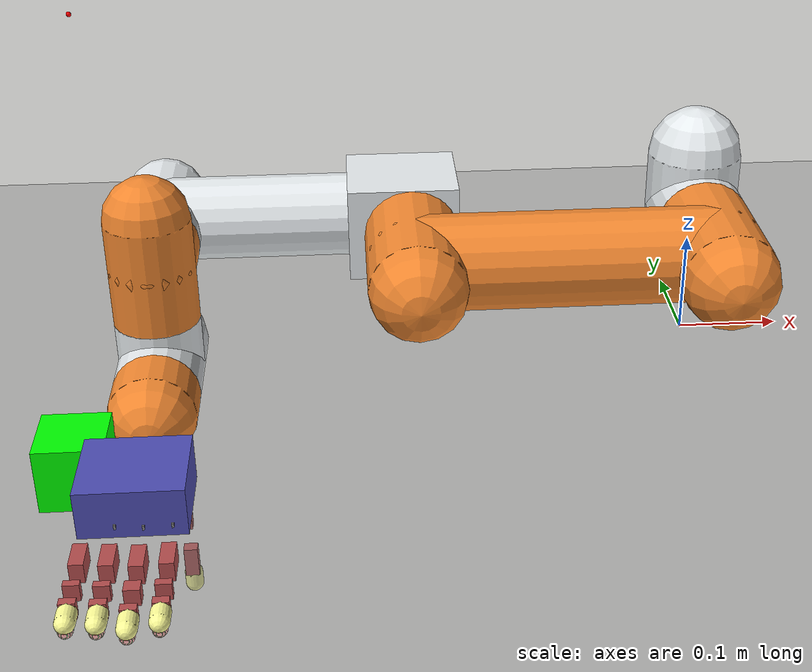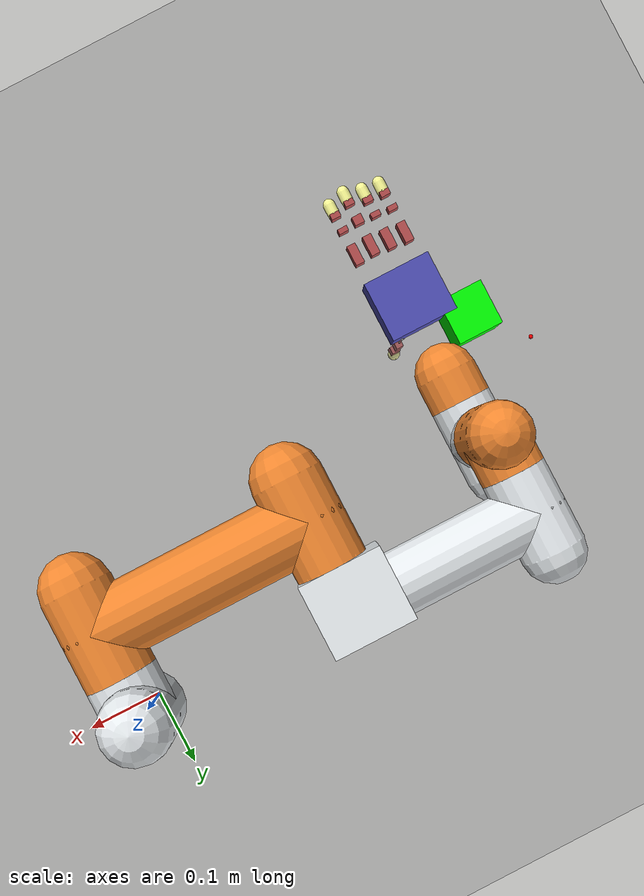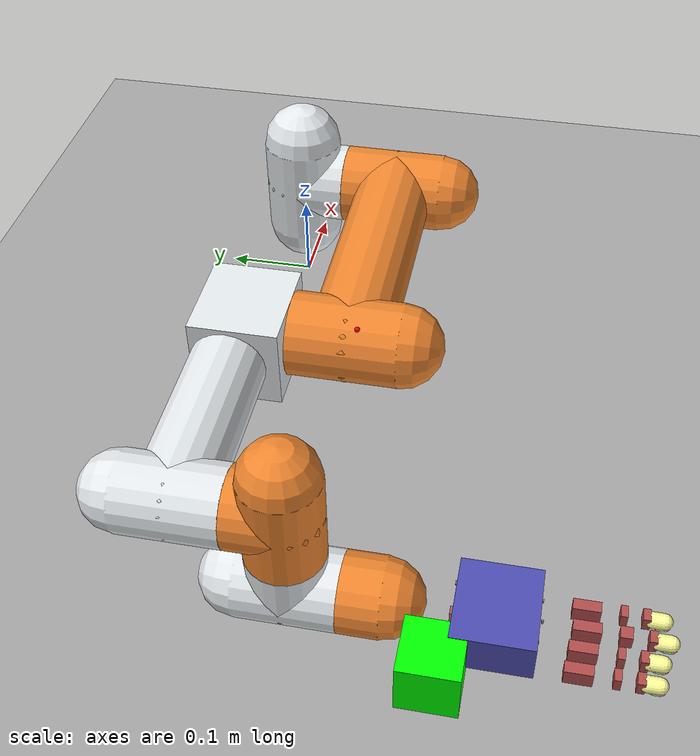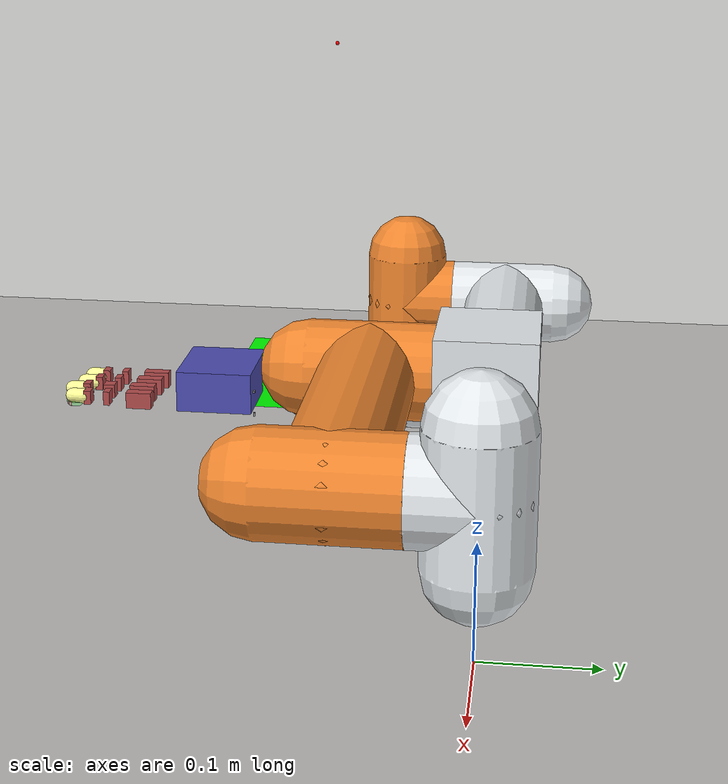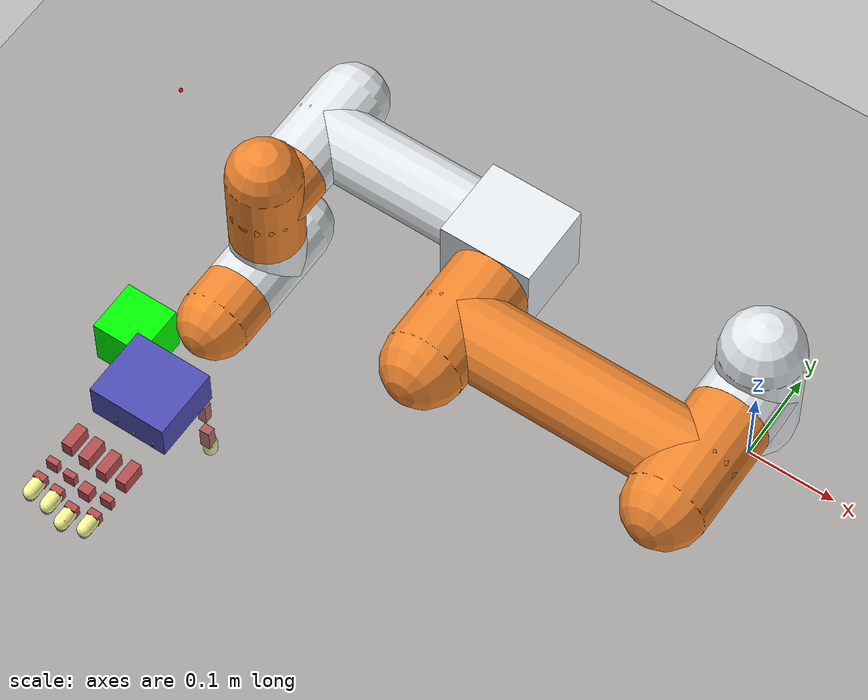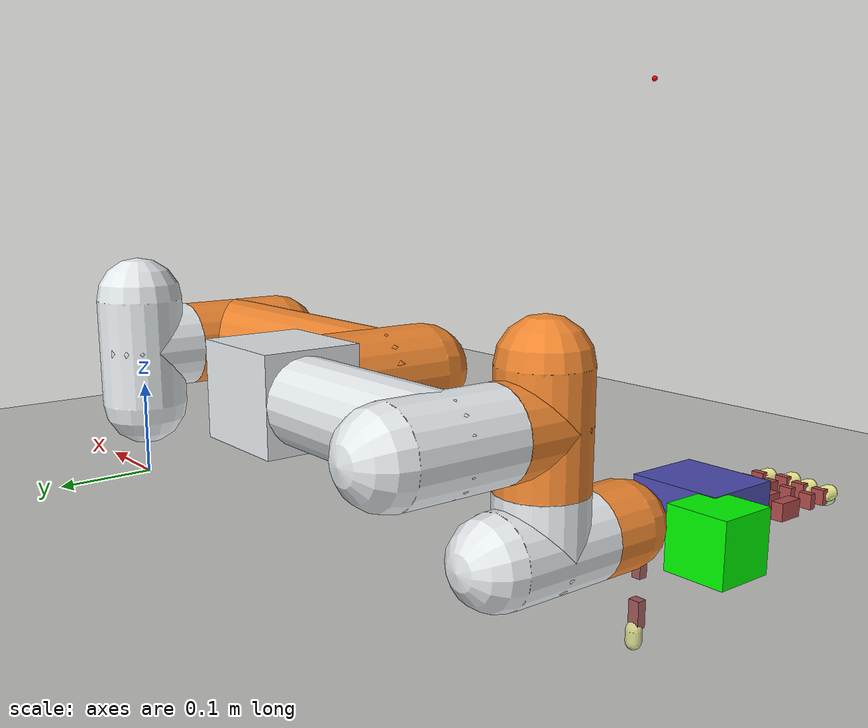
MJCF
<?xml version='1.0' encoding='utf-8'?>
<mujoco model="para_nontendon_fr3">
    <compiler angle="radian" />
    <option integrator="implicitfast" />
    <default>
        <geom condim='4' solref=".01 1" solimp=".95 .99 .0005" contype="1" conaffinity="1"/>
        <default class="cube">
            <geom friction="1.0 0.1 0.002" contype="2" conaffinity="7" condim="4" />
        </default>
        <default class="hand">
            <geom type="mesh" density="1250" friction="1 0.05 0.0002" rgba="0 0 1 0" />
        </default>
        <default class="visual">
            <geom contype="0" conaffinity="0" group="2" density="1" />
        </default>
        <default class="tip">
            <geom zaxis="1 0 0" type="capsule" size="0.008 0.006" pos="0.022 0 0" rgba="1 1 .6 1" density="1000" friction="1 0.2 0.01" />
        </default>
		<default class="tac">
            <geom zaxis="1 0 0" type="capsule" size="0.006 0.003" pos="0.026 0.006 0" rgba="0 1 0 0.3" density="1000" friction="1 0.2 0.01" />
        </default>
        <default class="collision">
            <geom density="1250" friction="1.0 0.1 0.001" rgba="0.7 0.3 0.3 1" />
            <default class="link_1_collision">
                <geom type="box" pos="0.019235 0.00017 0" size="0.013545 0.00875 0.00599"/>
            </default>
            <default class="link_2_collision">
                <geom type="box" pos="-0.0125 0 0" size="0.00341 0.0075 0.0065"/>
            </default>
            <default class="link_3_collision">
                <geom type="box" pos="0.01113 0 0" size="0.003805 0.0075 0.0065"/>
            </default>
        </default>
        <default class="palm_collision">
            <geom density="1500" friction="1.0 0.1 0.001" rgba="0.3 0.3 0.7 1" />
        </default>
        <default class="tendon">
            <tendon width=".0005" rgba="0 0 .9 1" solreflimit=".001 1" solimplimit="0.99 0.999 0.00001 0.1 20" stiffness="1" />
        </default>
        <default class="thumb_joint">
            <joint type="hinge" range="0 1.57" limited="true" armature="0.001" damping="4e-04" />
            <position forcelimited="true" forcerange="-0.128 0.128" ctrllimited="true" inheritrange="1" kp="10" dampratio="1.1"/>
        </default>
        <default class="swing_joint">
            <joint type="hinge"  armature="0.001" damping="4e-04" range="-0.26 0.26" />
            <position forcelimited="true" forcerange="-0.128 0.128" ctrllimited="true" inheritrange="1" kp="10" dampratio="1.1"/>
        </default>
        <default class="finger_joint">
            <joint type="hinge" range="0 1.57" limited="true" armature="0.001" damping="4e-04" />
            <position forcelimited="true" forcerange="-0.128 0.128" ctrllimited="true" inheritrange="1" kp="10" dampratio="1.1"/>
        </default>
        <default class="touch_sensor">
            <site rgba="1 0 0 0.3" zaxis="1 0 0" size="0.006" pos="0.029 0.006 0"/>
        </default>
        <default class="fr3">
            <joint type="hinge" axis="0 0 1" armature="0.1" />
            <position ctrllimited="true" inheritrange="1" kp="2000" kv="200"/>
        </default>
    </default>
    <asset>
        <texture type="2d" name="groundplane" builtin="checker" mark="edge" rgb1="1 1 1" rgb2="0 0 0" markrgb="0 0 0" width="300" height="300" />
        <material name="groundplane" texture="groundplane" texuniform="true" texrepeat="5 5" reflectance="0" />
    </asset>
    <option gravity="0 0 -9.81" />
    <keyframe>
        <key name="home"
            qpos="-0.03 -1.0 1.47 -0.563 1.37 1.0
                0 0 0 0
                0 0 0 0
                0 0 0 0
                0 0 0 0
                0 0 0 0
                -0.58 -0.25 0.03 1 0 0 0"
            qvel="0 0 0 0 0 0
                0 0 0 0
                0 0 0 0
                0 0 0 0
                0 0 0 0
                0 0 0 0
                0 0 0 0 0 0"
            ctrl="-0.03 -1.0 1.47 -0.563 1.37 1.0
                0 0 0 0
                0 0 0 0
                0 0 0 0
                0 0 0 0
                0 0 0 0" />
    </keyframe>
    <worldbody>
        <camera name="default" pos="-0.988 -1.151 0.478" xyaxes="0.813 -0.582 0.000 0.116 0.162 0.980"/>
        <camera name="cam1" pos="-0.429 -1.169 0.358" xyaxes="0.984 -0.178 -0.000 0.028 0.154 0.988"/>
        <camera name="cam_close" pos="-0.139 -0.614 0.217" xyaxes="0.830 0.557 -0.000 -0.218 0.324 0.921"/>

        <geom name="floor" pos="0 0 0" size="0 0 0.01" type="plane" material="groundplane" friction="0.8 0.05 0.05" contype="32" conaffinity="4194176"/>
        <site name="target" pos="-0.55 -0.18 0.4" size="0.002" rgba="1 0 0 1" />

        <body name="base_link" pos="0 0 0">
            <inertial pos="-0.00049027 -0.00045095 0.032527" mass="0.78393" fullinertia="0.0013854 0.0013849 0.001977 1.1455E-05 -1.0642E-05 -9.7435E-06" />

            <body name="shoulder_link">
                <joint class="fr3" name="j1" range="-3.0543 3.0543" />
                <inertial pos="-3.8658E-07 -0.0024176 0.13519" mass="2.1225" fullinertia="0.0033227 0.0032419 0.0023129 -5.0648E-08 -6.3401E-09 4.3768E-05" />
                <geom pos="0 0 0.13674" rgba="0.89804 0.91765 0.92941 1" type="capsule" size="0.045 0.05694" group="0" contype="16" conaffinity="4193344"/>
                <geom pos="0 -0.0269 0.14" zaxis="0 1 0" rgba="0.89804 0.91765 0.92941 1" type="capsule" size="0.045 0.0269" group="0" contype="16" conaffinity="4193344"/>

                <body name="upperarm_link" pos="0 0 0.14" zaxis="0 -1 0">
                    <joint class="fr3" name="j2" range="-4.6251 1.4835" />
                    <inertial pos="-0.14111 3.4656E-06 0.11053" mass="4.8053" fullinertia="0.0075945 0.0081317 0.0059231 3.7143E-07 -7.9228E-12 -1.2918E-11" />
                    <geom pos="0 0 0.11194" zaxis="0 0 1" rgba="0.94118 0.52941 0.18824 1" type="capsule" size="0.045 0.05794" group="0" contype="8" conaffinity="4194048"/>
                    <geom pos="-0.14 0 0.114" zaxis="1 0 0" rgba="0.94118 0.52941 0.18824 1" type="capsule" size="0.045 0.14" group="0" contype="8" conaffinity="4194048"/>
                    <geom pos="-0.28 0 0.11194" zaxis="0 0 1" rgba="0.94118 0.52941 0.18824 1" type="capsule" size="0.045 0.05794" group="0" contype="1" conaffinity="4193280"/>

                    <body name="forearm_link" pos="-0.28 0 0" euler="0 0 0">
                        <joint class="fr3" name="j3" range="-2.8274 2.8274" />
                        <inertial pos="-0.18987 5.2268E-06 0.0034145" mass="2.2312" fullinertia="0.0028852 0.0035145 0.0029186 7.3389E-07 -3.5373E-05 -2.8527E-07" />
                        <geom pos="-0.1499 0 0" zaxis="1 0 0" rgba="0.89804 0.91765 0.92941 1" type="capsule" size="0.04 0.0899" group="0" contype="128" conaffinity="4193312" />
                        <geom pos="-0.24 0 0.00182" zaxis="0 0 1" rgba="0.89804 0.91765 0.92941 1" type="capsule" size="0.04 0.05118" group="0" contype="2" conaffinity="3932672"/>
                        <geom pos="-0.007505 0 0.0069" zaxis="0 1 0" rgba="0.89804 0.91765 0.92941 1" type="box" size="0.0525 0.047 0.045" group="0" contype="64" conaffinity="3670032"/>

                        <body name="wrist1_link" pos="-0.24001 0 0" euler="0 0 0">
                            <joint class="fr3" name="j4" range="-4.6251 1.4835" />
                            <inertial pos="4.5665E-07 -0.0034666 0.098292" mass="1.5961" fullinertia="0.0020112 0.0014524 0.0019076 6.8085E-09 2.4945E-08 3.2511E-05" />
                            <geom pos="0 0 0.07785" zaxis="0 0 1" rgba="0.94118 0.52941 0.18824 1" type="capsule" size="0.04 0.0244" group="0" contype="256" conaffinity="2097192"/>
                            <geom pos="0 -0.00291 0.102" zaxis="0 1 0" rgba="0.94118 0.52941 0.18824 1" type="capsule" size="0.04 0.050275" group="0" contype="256" conaffinity="2097192"/>

                            <body name="wrist2_link" pos="0 0 0.102" euler="1.5708 0 0">
                                <joint class="fr3" name="j5" range="-3.0543 3.0543" />
                                <inertial pos="-4.5262E-07 0.0034666 0.098292" mass="1.5961" fullinertia="0.0020112 0.0014524 0.0019076 6.8086E-09 -2.4945E-08 -3.2511E-05" />
                                <geom pos="0 0 0.07785" zaxis="0 0 1" rgba="0.89804 0.91765 0.92941 1" type="capsule" size="0.04 0.0244" group="0" contype="512" conaffinity="2097198"/>
                                <geom pos="0 0.00291 0.102" zaxis="0 1 0" rgba="0.89804 0.91765 0.92941 1" type="capsule" size="0.04 0.050275" group="0" contype="512" conaffinity="2097198"/>

                                <body name="wrist3_link" pos="0 0 0.102" euler="-1.5708 0 0">
                                    <joint class="fr3" name="j6" range="-3.0543 3.0543" />
                                    <inertial pos="7.559E-05 1.3858E-05 0.076619" mass="0.53877" fullinertia="0.00028785 0.00028896 0.00042655 -2.0584E-09 -1.3892E-07 1.8115E-07" />
                                    <geom pos="0 0 0.0736" zaxis="0 0 1" rgba="0.94118 0.52941 0.18824 1" type="capsule" size="0.04 0.0204" group="0" />

                                        <body name="palm" pos="0 0 0.1" euler="0 0 0" childclass="hand">
                                        <site name="test" size="0.002" rgba="0 0 1 1" />
                                            <site name="inner_palm_5" pos="-0.00249 -0.021 0.1" size="0.002" rgba="0 0 1 1" />
                                            <geom name="palm_collision_1" type="box" pos="-0.00249 0.00075 0.1" size="0.045 0.02175 0.04" class="palm_collision" contype="262144" conaffinity="2097343"/>
                                            <body name="thumb_link_0" pos="0.01905 0 0.05851" euler="3.14 1.57 0">
                                                <joint name="thumb_joint_0" type="hinge" axis="0 1 0" class="thumb_joint" range="0 0.785"/>
                                                <geom type="box" pos="0 0 0.01" size="0.001 0.001 0.002" class="visual" />
                                                <body name="thumb_link_1" pos="0 0.01489 0.011500" euler="-1.57 0 0">
                                                    <joint name="thumb_joint_1" type="hinge" axis="-1 0 0" class="thumb_joint" range="-1.57 0.785"/>
                                                    <geom type="box" pos="0 0 0.01" size="0.001 0.001 0.002" class="visual" />
                                                    <body name="thumb_link_2" pos="0 0 0.022500" euler="-1.57 0 -1.57">
                                                        <joint name="thumb_joint_2" type="hinge" axis="0 0 1" class="thumb_joint" range="-0.611 1.57"/>
                                                        <geom name="thumb_link_2_collision" type="box" pos="0.0225 0 0.00075" size="0.013795 0.00471 0.00485" class="collision" contype="524288" conaffinity="2343167"/>
                                                        <body name="thumb_link_3" pos="0.04970 0 0" euler="0 0 -3.14">
                                                            <joint name="thumb_joint_3" type="hinge" axis="0 0 1" class="thumb_joint"/>
                                                            <geom name="thumb_link_3_collision" type="box" pos="-0.0227 0 0" size="0.014 0.005 0.006" class="collision" contype="1048576" conaffinity="2357503"/>
                                                            <geom name="thumb_tip" pos="-0.0442 0.003 0" class="tip" contype="1048576" conaffinity="2357503"/>
                                                            <site name="thumb_tip" pos="-0.0502 -0.003 0" class="touch_sensor"/>
                                                            <geom name="thumb_tac" pos="-0.0472 -0.003 0" class="tac" contype="1048576" conaffinity="2357503"/>
                                                        </body>
                                                    </body>
                                                </body>
                                            </body>
                                            <body name="index_link_0" pos="0.03040 0 0.14156" euler="1.57 0 3.14">
                                                <joint name="index_swing" axis="0 0 1." class="swing_joint" range="-0.52 0.26"/>
                                                <geom type="box" pos="0 0 0.01" size="0.001 0.001 0.002" class="visual" />
                                                <body name="index_link_1" pos="0 -0.0225000 0.014000" euler="1.57 -1.57 0">
                                                    <joint name="index_joint_0" axis="0 0 1" class="finger_joint" />
                                                    <geom name="index_link_1_collision" class="link_1_collision" contype="2048" conaffinity="3285181"/>
                                                    <body name="index_link_2" pos="0.04166 -0.00102 0" euler="-3.14 0 -3.14">
                                                        <joint name="index_joint_1" axis="0 0 -1" class="finger_joint" />
                                                        <geom name="index_link_2_collision" class="link_2_collision" contype="2048" conaffinity="3285181"/>
                                                        <body name="index_link_3" pos="-0.0225 0 0" euler="-3.14 0 3.14">
                                                            <joint name="index_joint_2" axis="0 0 1" class="finger_joint" />
                                                            <geom name="index_link_3_collision" class="link_3_collision" contype="32768" conaffinity="3875005"/>
                                                            <geom name="index_tip" class="tip" contype="32768" conaffinity="3875005"/>
                                                            <site name="index_tip" class="touch_sensor" />
                                                            <geom name="index_tac" class="tac" contype="32768" conaffinity="3875005"/>
                                                        </body>
                                                    </body>
                                                </body>
                                            </body>
                                            <body name="middle_link_0" pos="0.00710 0 0.14306" euler="1.57 0 3.14">
                                                <joint name="middle_swing" axis="0 0 1" class="swing_joint"/>
                                                <geom type="box" pos="0 0 0.01" size="0.001 0.001 0.002" class="visual" />
                                                <body name="middle_link_1" pos="0 -0.0225000 0.014000" euler="1.57 -1.57 0">
                                                    <joint name="middle_joint_0" axis="0 0 1" class="finger_joint" />
                                                    <geom name="middle_link_1_collision" class="link_1_collision" contype="8192" conaffinity="3250365"/>
                                                    <body name="middle_link_2" pos="0.04166 -0.00102 0" euler="-3.14 0 -3.14">
                                                        <joint name="middle_joint_1" axis="0 0 -1" class="finger_joint"/>
                                                        <geom name="middle_link_2_collision" class="link_2_collision" pos="-0.01388 0 0" size="0.00591 0.0075 0.0065" contype="2048" conaffinity="3285181"/>
                                                        <body name="middle_link_3" pos="-0.0275 0 0" euler="-3.14 0 3.14">
                                                            <joint name="middle_joint_2" axis="0 0 1" class="finger_joint" />
                                                            <geom name="middle_link_3_collision" class="link_3_collision" contype="131072" conaffinity="3791037"/>
                                                            <geom name="middle_tip" class="tip" contype="131072" conaffinity="3791037"/>
                                                            <site name="middle_tip" class="touch_sensor" />
                                                            <geom name="middle_tac" class="tac" contype="131072" conaffinity="3791037"/>
                                                        </body>
                                                    </body>
                                                </body>
                                            </body>
                                            <body name="ring_link_0" pos="-0.0162 0 0.14056" euler="1.57 0 3.14">
                                                <joint name="ring_swing" axis="0 0 1" class="swing_joint" />
                                                <geom type="box" pos="0 0 0.01" size="0.001 0.001 0.002" class="visual" />
                                                <body name="ring_link_1" pos="0 -0.0225000 0.014000" euler="1.57 -1.57 0">
                                                    <joint name="ring_joint_0" axis="0 0 1" class="finger_joint" />
                                                    <geom name="ring_link_1_collision" class="link_1_collision" contype="4096" conaffinity="3302589"/>
                                                    <body name="ring_link_2" pos="0.04166 -0.00102 0" euler="-3.14 0 -3.14">
                                                        <joint name="ring_joint_1" axis="0 0 -1" class="finger_joint" />
                                                        <geom name="ring_link_2_collision" class="link_2_collision" contype="4096" conaffinity="3302589"/>
                                                        <body name="ring_link_3" pos="-0.0225 0 0" euler="-3.14 0 3.14">
                                                            <joint name="ring_joint_2" axis="0 0 1" class="finger_joint" />
                                                            <geom name="ring_link_3_collision" class="link_3_collision" contype="65536" conaffinity="3859645"/>
                                                            <geom name="ring_tip" class="tip" contype="65536" conaffinity="3859645"/>
                                                            <site name="ring_tip" class="touch_sensor" />
                                                            <geom name="ring_tac" class="tac" contype="65536" conaffinity="3859645"/>
                                                        </body>
                                                    </body>
                                                </body>
                                            </body>
                                            <body name="little_link_0" pos="-0.0393 0 0.13806" euler="1.57 0 3.14">
                                                <joint name="little_swing" axis="0 0 1" class="swing_joint" range="-0.26 0.52"/>
                                                <geom type="box" pos="0 0 0.01" size="0.001 0.001 0.002" class="visual" />
                                                <body name="little_link_1" pos="0 -0.0225000 0.014000" euler="1.57 -1.57 0">
                                                    <joint name="little_joint_0" axis="0 0 1" class="finger_joint" />
                                                    <geom name="little_link_1_collision" class="link_1_collision" contype="1024" conaffinity="2166973"/>
                                                    <body name="little_link_2" pos="0.04166 -0.00102 0" euler="-3.14 0 -3.14">
                                                        <joint name="little_joint_1" axis="0 0 -1" class="finger_joint" />
                                                        <geom name="little_link_2_collision" class="link_2_collision" contype="1024" conaffinity="2166973"/>
                                                        <body name="little_link_3" pos="-0.0225 0 0" euler="-3.14 0 3.14">
                                                            <joint name="little_joint_2" axis="0 0 1" class="finger_joint" />
                                                            <geom name="little_link_3_collision" class="link_3_collision" contype="16384" conaffinity="3870909"/>
                                                            <geom name="little_tip" class="tip" contype="16384" conaffinity="3870909"/>
                                                            <site name="little_tip" class="touch_sensor" />
                                                            <geom name="little_tac" class="tac" contype="16384" conaffinity="3870909"/>
                                                        </body>
                                                    </body>
                                                </body>
                                            </body>
                                        </body>

                                </body>
                            </body>
                        </body>
                    </body>
                </body>
            </body>
        </body>
        <body name="cube" pos="-0.58 -0.25 0.03" quat="0 0 0 1" childclass="cube">
            <freejoint name="cube_freejoint" />
            <geom name="cube" type="box" pos="0 0 0" size="0.03 0.03 0.03" rgba="0 1 0 1" density="500" condim="4" solref="0.02 1" contype="2097152" conaffinity="2097151"/>
            <site name="cube_center" pos="0 0 0" group="4" />
        </body>
    </worldbody>
    <contact>
        <!-- Prevent palm self-collision with the proximal finger links. -->
        <exclude body1="palm" body2="thumb_link_1"/>
        <exclude body1="thumb_link_1" body2="thumb_link_2"/>
        <exclude body1="thumb_link_2" body2="thumb_link_3"/>
        <exclude body1="palm" body2="index_link_1"/>
        <exclude body1="index_link_1" body2="index_link_2"/>
        <exclude body1="index_link_2" body2="index_link_3"/>
        <exclude body1="palm" body2="middle_link_1"/>
        <exclude body1="middle_link_1" body2="middle_link_2"/>
        <exclude body1="middle_link_2" body2="middle_link_3"/>
        <exclude body1="palm" body2="ring_link_1"/>
        <exclude body1="ring_link_1" body2="ring_link_2"/>
        <exclude body1="ring_link_2" body2="ring_link_3"/>
        <exclude body1="palm" body2="little_link_1"/>
        <exclude body1="little_link_1" body2="little_link_2"/>
        <exclude body1="little_link_2" body2="little_link_3"/>
        <exclude body1="base_link" body2="shoulder_link"/>
        <exclude body1="base_link" body2="upperarm_link"/>
        <exclude body1="shoulder_link" body2="upperarm_link"/>
        <exclude body1="upperarm_link" body2="forearm_link"/>
        <exclude body1="forearm_link" body2="wrist1_link"/>
        <exclude body1="forearm_link" body2="wrist2_link"/>
        <exclude body1="wrist1_link" body2="wrist2_link"/>
        <exclude body1="wrist2_link" body2="wrist3_link"/>
        <exclude body1="wrist3_link" body2="wrist1_link"/>
        <exclude body1="wrist1_link" body2="palm"/>
        <exclude body1="wrist2_link" body2="palm"/>
        <exclude body1="wrist3_link" body2="palm"/>
    </contact>
    <actuator>
        <position class="fr3" name="j1" joint="j1"/>
        <position class="fr3" name="j2" joint="j2"/>
        <position class="fr3" name="j3" joint="j3"/>
        <position class="fr3" name="j4" joint="j4"/>
        <position class="fr3" name="j5" joint="j5"/>
        <position class="fr3" name="j6" joint="j6"/>
        <position class="thumb_joint" name="thumb_joint_0" joint="thumb_joint_0"/>
        <position class="thumb_joint" name="thumb_joint_1" joint="thumb_joint_1"/>
        <position class="thumb_joint" name="thumb_joint_2" joint="thumb_joint_2"/>
        <position class="thumb_joint" name="thumb_joint_3" joint="thumb_joint_3"/>
        <position class="swing_joint" name="index_swing" joint="index_swing"/>
        <position class="finger_joint" name="index_joint_0" joint="index_joint_0"/>
        <position class="finger_joint" name="index_joint_1" joint="index_joint_1"/>
        <position class="finger_joint" name="index_joint_2" joint="index_joint_2"/>
        <position class="swing_joint" name="middle_swing" joint="middle_swing"/>
        <position class="finger_joint" name="middle_joint_0" joint="middle_joint_0"/>
        <position class="finger_joint" name="middle_joint_1" joint="middle_joint_1"/>
        <position class="finger_joint" name="middle_joint_2" joint="middle_joint_2"/>
        <position class="swing_joint" name="ring_swing" joint="ring_swing"/>
        <position class="finger_joint" name="ring_joint_0" joint="ring_joint_0"/>
        <position class="finger_joint" name="ring_joint_1" joint="ring_joint_1"/>
        <position class="finger_joint" name="ring_joint_2" joint="ring_joint_2"/>
        <position class="swing_joint" name="little_swing" joint="little_swing"/>
        <position class="finger_joint" name="little_joint_0" joint="little_joint_0"/>
        <position class="finger_joint" name="little_joint_1" joint="little_joint_1"/>
        <position class="finger_joint" name="little_joint_2" joint="little_joint_2"/>
    </actuator>
    <sensor>
        <framepos name="cube_pos" objtype="body" objname="cube" />
        <framequat name="cube_quat" objtype="body" objname="cube" />
        <framelinvel name="cube_linvel" objtype="body" objname="cube" />
        <frameangvel name="cube_angvel" objtype="body" objname="cube" />
        <frameangacc name="cube_angacc" objtype="body" objname="cube" />
        <framezaxis name="cube_upvector" objtype="body" objname="cube" />
        <framepos name="palm_pos" objtype="site" objname="inner_palm_5" />
        <framepos name="thumb_fingertip_pos" objtype="site" objname="thumb_tip" />
        <framepos name="index_fingertip_pos" objtype="site" objname="index_tip" />
        <framepos name="middle_fingertip_pos" objtype="site" objname="middle_tip" />
        <framepos name="ring_fingertip_pos" objtype="site" objname="ring_tip" />
        <framepos name="little_fingertip_pos" objtype="site" objname="little_tip" />
        <touch name="thumb_touch" site="thumb_tip" />
        <touch name="index_touch" site="index_tip" />
        <touch name="middle_touch" site="middle_tip" />
        <touch name="ring_touch" site="ring_tip" />
        <touch name="little_touch" site="little_tip" />
	</sensor>
</mujoco>
